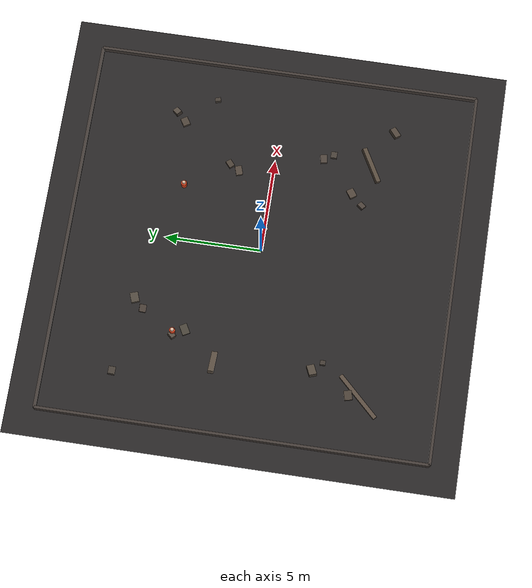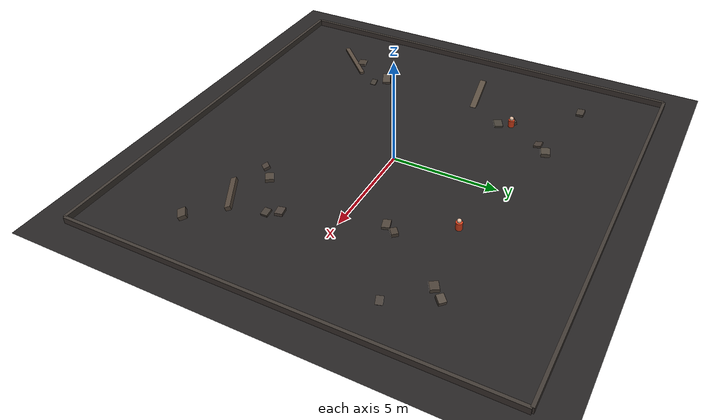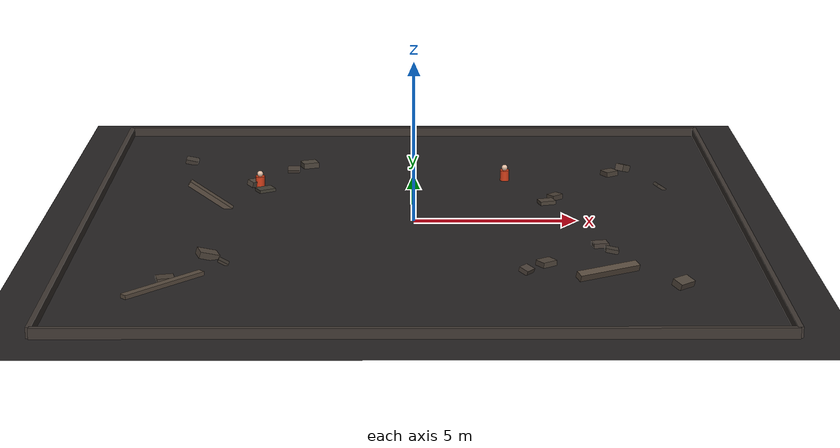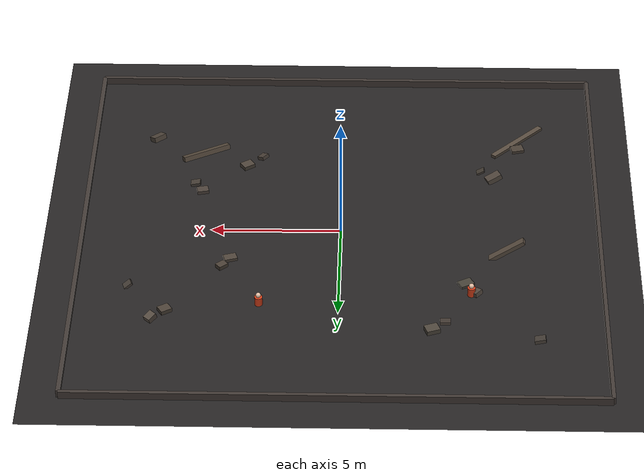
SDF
<?xml version="1.0"?>
<sdf version="1.6">
  <world name="disaster_rubble">
    <gravity>0 0 -9.81</gravity>

    <!-- 昏暗应急照明 -->
    <scene>
      <ambient>0.18 0.18 0.22 1.0</ambient>
      <background>0.05 0.05 0.08 1.0</background>
      <shadows>true</shadows>
    </scene>

    <light name="sun" type="directional">
      <cast_shadows>true</cast_shadows>
      <pose>0 0 15 0.5 -0.3 0</pose>
      <diffuse>0.4 0.38 0.35 1.0</diffuse>
      <specular>0.1 0.1 0.1 1.0</specular>
      <direction>-0.5 0.3 -1.0</direction>
    </light>

    <!-- 地面: 暗色废墟纹理 -->
    <model name="ground">
      <static>true</static>
      <link name="link">
        <collision name="collision">
          <geometry><plane><normal>0 0 1</normal><size>25 25</size></plane></geometry>
        </collision>
        <visual name="visual">
          <geometry><plane><normal>0 0 1</normal><size>25 25</size></plane></geometry>
          <material>
            <ambient>0.08 0.07 0.07 1</ambient>
            <diffuse>0.15 0.14 0.14 1</diffuse>
            <specular>0.01 0.01 0.01 1</specular>
          </material>
        </visual>
      </link>
    </model>

    <!-- 边界围墙 -->
    <model name="wall_north"><static>true</static>
      <pose>0 10 0.15 0 0 0</pose>
      <link name="link">
        <visual name="v"><geometry><box><size>20 0.15 0.30</size></box></geometry>
          <material><diffuse>0.25 0.22 0.20 1</diffuse></material></visual>
        <collision name="c"><geometry><box><size>20 0.15 0.30</size></box></geometry></collision>
      </link>
    </model>
    <model name="wall_south"><static>true</static>
      <pose>0 -10 0.15 0 0 0</pose>
      <link name="link">
        <visual name="v"><geometry><box><size>20 0.15 0.30</size></box></geometry>
          <material><diffuse>0.25 0.22 0.20 1</diffuse></material></visual>
        <collision name="c"><geometry><box><size>20 0.15 0.30</size></box></geometry></collision>
      </link>
    </model>
    <model name="wall_east"><static>true</static>
      <pose>10 0 0.15 0 0 0</pose>
      <link name="link">
        <visual name="v"><geometry><box><size>0.15 20 0.30</size></box></geometry>
          <material><diffuse>0.25 0.22 0.20 1</diffuse></material></visual>
        <collision name="c"><geometry><box><size>0.15 20 0.30</size></box></geometry></collision>
      </link>
    </model>
    <model name="wall_west"><static>true</static>
      <pose>-10 0 0.15 0 0 0</pose>
      <link name="link">
        <visual name="v"><geometry><box><size>0.15 20 0.30</size></box></geometry>
          <material><diffuse>0.25 0.22 0.20 1</diffuse></material></visual>
        <collision name="c"><geometry><box><size>0.15 20 0.30</size></box></geometry></collision>
      </link>
    </model>

    <!-- 中央通道: 约 [-3, 3] x [-2, 2] 区域无障碍 -->

    <!-- 废墟堆: 散落碎石 -->
    <model name="rubble_01"><static>true</static><pose>4.2 1.8 0.06 0 0 0.3</pose>
      <link name="link"><visual name="v"><geometry><box><size>0.50 0.35 0.12</size></box></geometry>
        <material><diffuse>0.30 0.26 0.22 1</diffuse></material></visual>
        <collision name="c"><geometry><box><size>0.50 0.35 0.12</size></box></geometry></collision></link></model>

    <model name="rubble_02"><static>true</static><pose>4.5 2.3 0.08 0 0 0.7</pose>
      <link name="link"><visual name="v"><geometry><box><size>0.40 0.30 0.16</size></box></geometry>
        <material><diffuse>0.28 0.24 0.20 1</diffuse></material></visual>
        <collision name="c"><geometry><box><size>0.40 0.30 0.16</size></box></geometry></collision></link></model>

    <model name="rubble_03"><static>true</static><pose>-4.8 3.2 0.05 0 0 0.5</pose>
      <link name="link"><visual name="v"><geometry><box><size>0.55 0.40 0.10</size></box></geometry>
        <material><diffuse>0.27 0.25 0.21 1</diffuse></material></visual>
        <collision name="c"><geometry><box><size>0.55 0.40 0.10</size></box></geometry></collision></link></model>

    <model name="rubble_04"><static>true</static><pose>-5.2 3.8 0.09 0.2 0.1 0.8</pose>
      <link name="link"><visual name="v"><geometry><box><size>0.35 0.28 0.18</size></box></geometry>
        <material><diffuse>0.32 0.28 0.24 1</diffuse></material></visual>
        <collision name="c"><geometry><box><size>0.35 0.28 0.18</size></box></geometry></collision></link></model>

    <model name="rubble_05"><static>true</static><pose>5.5 -2.5 0.07 0 0 0.2</pose>
      <link name="link"><visual name="v"><geometry><box><size>0.45 0.35 0.14</size></box></geometry>
        <material><diffuse>0.29 0.25 0.22 1</diffuse></material></visual>
        <collision name="c"><geometry><box><size>0.45 0.35 0.14</size></box></geometry></collision></link></model>

    <model name="rubble_06"><static>true</static><pose>5.8 -3.0 0.06 0 0.2 0</pose>
      <link name="link"><visual name="v"><geometry><box><size>0.38 0.32 0.12</size></box></geometry>
        <material><diffuse>0.26 0.23 0.20 1</diffuse></material></visual>
        <collision name="c"><geometry><box><size>0.38 0.32 0.12</size></box></geometry></collision></link></model>

    <model name="rubble_07"><static>true</static><pose>-6.0 -3.5 0.10 0.1 0.3 0.4</pose>
      <link name="link"><visual name="v"><geometry><box><size>0.60 0.40 0.20</size></box></geometry>
        <material><diffuse>0.31 0.27 0.23 1</diffuse></material></visual>
        <collision name="c"><geometry><box><size>0.60 0.40 0.20</size></box></geometry></collision></link></model>

    <model name="rubble_08"><static>true</static><pose>-5.5 -4.0 0.04 0 0.5 0</pose>
      <link name="link"><visual name="v"><geometry><box><size>0.32 0.28 0.08</size></box></geometry>
        <material><diffuse>0.25 0.22 0.19 1</diffuse></material></visual>
        <collision name="c"><geometry><box><size>0.32 0.28 0.08</size></box></geometry></collision></link></model>

    <model name="rubble_09"><static>true</static><pose>3.8 -4.2 0.08 0 0 0.6</pose>
      <link name="link"><visual name="v"><geometry><box><size>0.48 0.38 0.16</size></box></geometry>
        <material><diffuse>0.30 0.26 0.22 1</diffuse></material></visual>
        <collision name="c"><geometry><box><size>0.48 0.38 0.16</size></box></geometry></collision></link></model>

    <model name="rubble_10"><static>true</static><pose>3.2 -4.8 0.07 0.3 0 0.9</pose>
      <link name="link"><visual name="v"><geometry><box><size>0.35 0.30 0.14</size></box></geometry>
        <material><diffuse>0.28 0.24 0.21 1</diffuse></material></visual>
        <collision name="c"><geometry><box><size>0.35 0.30 0.14</size></box></geometry></collision></link></model>

    <model name="rubble_11"><static>true</static><pose>-3.5 6.0 0.09 0 0 0.35</pose>
      <link name="link"><visual name="v"><geometry><box><size>0.52 0.42 0.18</size></box></geometry>
        <material><diffuse>0.30 0.27 0.23 1</diffuse></material></visual>
        <collision name="c"><geometry><box><size>0.52 0.42 0.18</size></box></geometry></collision></link></model>

    <model name="rubble_12"><static>true</static><pose>-4.0 5.5 0.05 0.2 0 0</pose>
      <link name="link"><visual name="v"><geometry><box><size>0.40 0.35 0.10</size></box></geometry>
        <material><diffuse>0.27 0.23 0.20 1</diffuse></material></visual>
        <collision name="c"><geometry><box><size>0.40 0.35 0.10</size></box></geometry></collision></link></model>

    <model name="rubble_13"><static>true</static><pose>6.5 5.0 0.08 0 0 0.55</pose>
      <link name="link"><visual name="v"><geometry><box><size>0.45 0.38 0.16</size></box></geometry>
        <material><diffuse>0.29 0.25 0.21 1</diffuse></material></visual>
        <collision name="c"><geometry><box><size>0.45 0.38 0.16</size></box></geometry></collision></link></model>

    <model name="rubble_14"><static>true</static><pose>7.0 5.5 0.11 0 0.3 0.8</pose>
      <link name="link"><visual name="v"><geometry><box><size>0.38 0.32 0.22</size></box></geometry>
        <material><diffuse>0.32 0.28 0.24 1</diffuse></material></visual>
        <collision name="c"><geometry><box><size>0.38 0.32 0.22</size></box></geometry></collision></link></model>

    <model name="rubble_15"><static>true</static><pose>-7.0 -5.5 0.06 0 0 0.25</pose>
      <link name="link"><visual name="v"><geometry><box><size>0.50 0.40 0.12</size></box></geometry>
        <material><diffuse>0.28 0.24 0.20 1</diffuse></material></visual>
        <collision name="c"><geometry><box><size>0.50 0.40 0.12</size></box></geometry></collision></link></model>

    <model name="rubble_16"><static>true</static><pose>-7.5 6.5 0.07 0.1 0.2 0</pose>
      <link name="link"><visual name="v"><geometry><box><size>0.42 0.36 0.14</size></box></geometry>
        <material><diffuse>0.26 0.23 0.20 1</diffuse></material></visual>
        <collision name="c"><geometry><box><size>0.42 0.36 0.14</size></box></geometry></collision></link></model>

    <model name="rubble_17"><static>true</static><pose>7.5 -6.0 0.10 0.3 0 0.7</pose>
      <link name="link"><visual name="v"><geometry><box><size>0.55 0.35 0.20</size></box></geometry>
        <material><diffuse>0.30 0.26 0.22 1</diffuse></material></visual>
        <collision name="c"><geometry><box><size>0.55 0.35 0.20</size></box></geometry></collision></link></model>

    <model name="rubble_18"><static>true</static><pose>8.0 3.5 0.05 0 0.6 0.3</pose>
      <link name="link"><visual name="v"><geometry><box><size>0.35 0.30 0.10</size></box></geometry>
        <material><diffuse>0.27 0.24 0.21 1</diffuse></material></visual>
        <collision name="c"><geometry><box><size>0.35 0.30 0.10</size></box></geometry></collision></link></model>

    <!-- 倒塌墙体 (长条形倾斜箱体) -->
    <model name="collapsed_wall_01"><static>true</static>
      <pose>-6.0 1.5 0.08 0 0.6 0</pose>
      <link name="link">
        <visual name="v"><geometry><box><size>2.5 0.30 0.16</size></box></geometry>
        <material><diffuse>0.35 0.30 0.25 1</diffuse></material></visual>
        <collision name="c"><geometry><box><size>2.5 0.30 0.16</size></box></geometry></collision>
      </link>
    </model>

    <model name="collapsed_wall_02"><static>true</static>
      <pose>5.5 -5.0 0.10 0.3 0 0.5</pose>
      <link name="link">
        <visual name="v"><geometry><box><size>2.0 0.25 0.20</size></box></geometry>
        <material><diffuse>0.33 0.28 0.23 1</diffuse></material></visual>
        <collision name="c"><geometry><box><size>2.0 0.25 0.20</size></box></geometry></collision>
      </link>
    </model>

    <model name="collapsed_wall_03"><static>true</static>
      <pose>-7.0 -6.0 0.06 0 0 0.8</pose>
      <link name="link">
        <visual name="v"><geometry><box><size>2.8 0.22 0.12</size></box></geometry>
        <material><diffuse>0.34 0.29 0.24 1</diffuse></material></visual>
        <collision name="c"><geometry><box><size>2.8 0.22 0.12</size></box></geometry></collision>
      </link>
    </model>

    <!-- 幸存者模型 (生命探测目标) 位于废墟旁 -->
    <model name="survivor_01"><static>true</static>
      <pose>3.0 4.5 0.02 0 0 0</pose>
      <link name="body">
        <visual name="v">
          <geometry><cylinder><radius>0.15</radius><length>0.60</length></cylinder></geometry>
          <material><diffuse>0.85 0.25 0.10 1</diffuse></material>
        </visual>
        <collision name="c">
          <geometry><cylinder><radius>0.15</radius><length>0.60</length></cylinder></geometry>
        </collision>
      </link>
      <link name="head">
        <pose>0 0 0.38 0 0 0</pose>
        <visual name="v">
          <geometry><sphere><radius>0.10</radius></sphere></geometry>
          <material><diffuse>0.90 0.75 0.65 1</diffuse></material>
        </visual>
      </link>
      <joint name="head_joint" type="fixed">
        <parent>body</parent><child>head</child>
      </joint>
    </model>

    <model name="survivor_02"><static>true</static>
      <pose>-5.0 3.8 0.02 0 0 1.2</pose>
      <link name="body">
        <visual name="v">
          <geometry><cylinder><radius>0.15</radius><length>0.60</length></cylinder></geometry>
          <material><diffuse>0.85 0.25 0.10 1</diffuse></material>
        </visual>
        <collision name="c">
          <geometry><cylinder><radius>0.15</radius><length>0.60</length></cylinder></geometry>
        </collision>
      </link>
      <link name="head">
        <pose>0 0 0.38 0 0 0</pose>
        <visual name="v">
          <geometry><sphere><radius>0.10</radius></sphere></geometry>
          <material><diffuse>0.90 0.75 0.65 1</diffuse></material>
        </visual>
      </link>
      <joint name="head_joint" type="fixed">
        <parent>body</parent><child>head</child>
      </joint>
    </model>

    <!-- 机器人出生点 (由 sim.launch.py 的 spawn_entity.py 生成) -->
    <!-- 坐标: Scout(0,0), Carrier(-2,2), Specialist(2,2) -->

  </world>
</sdf>
